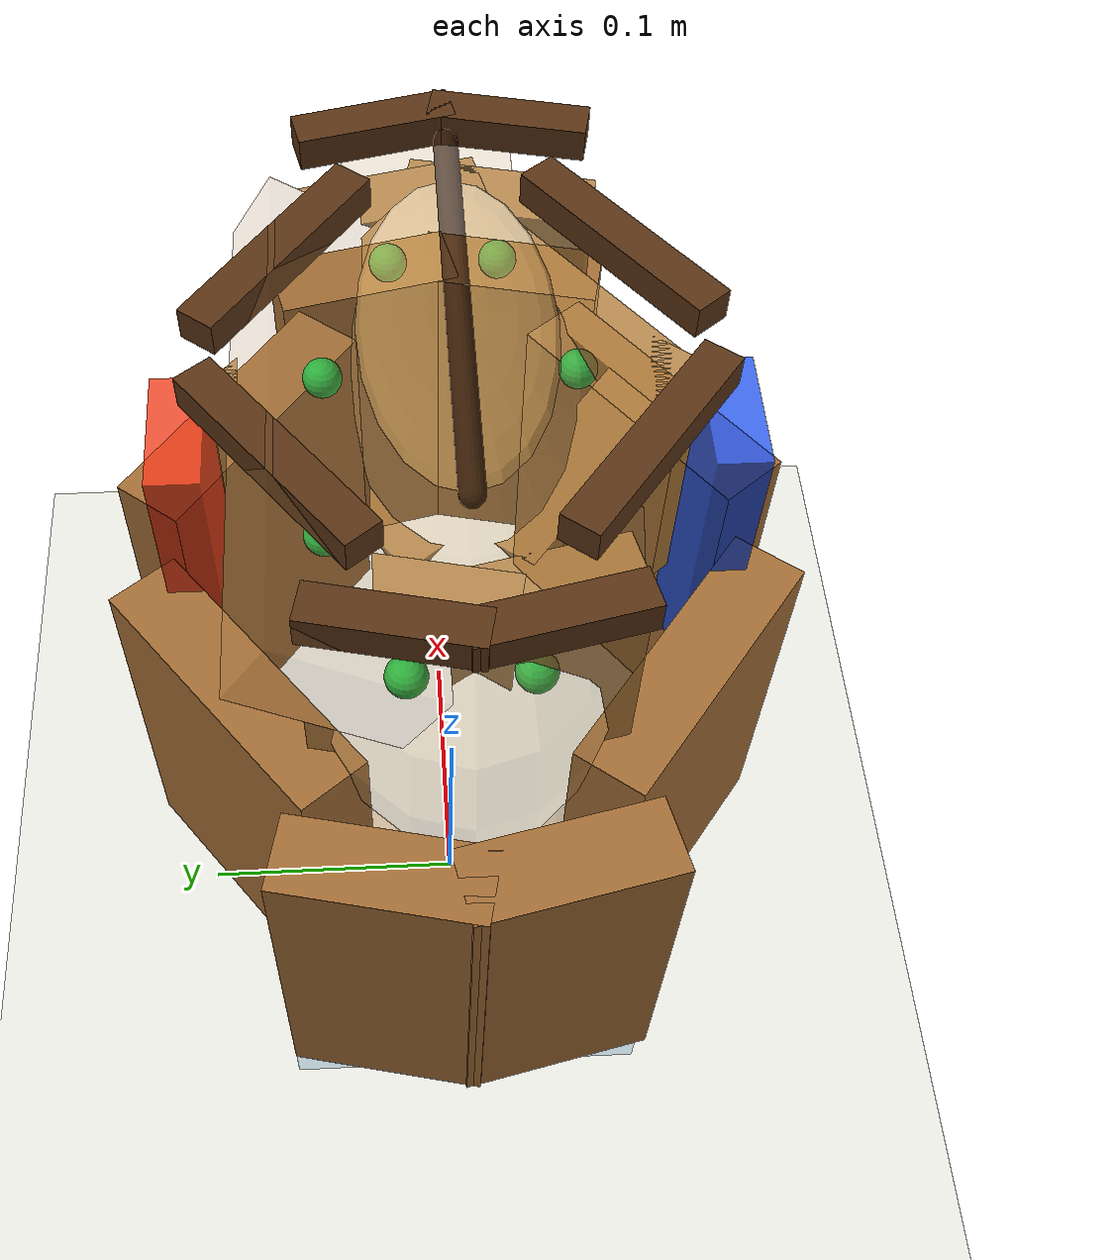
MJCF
<mujoco model="shape_coupled_sack_core_post_separation_sag">
  <compiler angle="degree" autolimits="true" />
  <option timestep="0.001000" gravity="0 0 -9.81" integrator="implicitfast" solver="Newton" iterations="100" ls_iterations="24" jacobian="sparse" cone="elliptic" impratio="4" />
  <size nconmax="900" njmax="1800" />
  <visual>
    <global offwidth="1280" offheight="820" />
  </visual>
  <worldbody>
    <geom friction="1.5 0.05 0.005" condim="4" solref="0.026 1" solimp="0.82 0.96 0.001" name="floor" type="plane" pos="0 0 0" size="2.0 2.0 0.05" rgba="0.91 0.91 0.89 1" />
    <light name="key_light" pos="0.4 -0.7 1.5" dir="-0.3 0.4 -1" />
    <camera name="front" pos="0.80 0 0.38" xyaxes="0 1 0 -0.24 0 0.97" />
    <camera name="side" pos="0 -0.78 0.38" xyaxes="1 0 0 0 0.24 0.97" />
    <camera name="overview" pos="0.85 -0.85 0.72" xyaxes="0.72 0.69 0 -0.34 0.35 0.87" />
    <body name="gripper_left_mocap" mocap="true" pos="0 -0.080000 0.230">
      <geom friction="2.3 0.12 0.010" condim="4" solref="0.030 1" solimp="0.78 0.94 0.001" name="gripper_left_mocap_pad" type="box" size="0.020 0.008 0.055" rgba="0.15 0.35 0.95 0.85" />
      <site name="gripper_left_mocap_site" pos="0 0 0" size="0.006" rgba="0.15 0.35 0.95 0.85" />
    </body>
    <body name="gripper_right_mocap" mocap="true" pos="0 0.080000 0.230">
      <geom friction="2.3 0.12 0.010" condim="4" solref="0.030 1" solimp="0.78 0.94 0.001" name="gripper_right_mocap_pad" type="box" size="0.020 0.008 0.055" rgba="0.95 0.25 0.12 0.85" />
      <site name="gripper_right_mocap_site" pos="0 0 0" size="0.006" rgba="0.95 0.25 0.12 0.85" />
    </body>
    <body name="gripper_center_mocap" mocap="true" pos="0 0 0.230">
      <site name="gripper_center_site" pos="0 0 0" size="0.006" rgba="1 1 0 0.8" />
    </body>
    <body name="hidden_support" pos="0 0 0.058">
      <geom friction="0.9 0.03 0.003" condim="4" solref="0.026 1" solimp="0.82 0.96 0.001" name="hidden_support_geom" type="box" size="0.104 0.062 0.012" rgba="0.10 0.65 0.95 0.24" />
    </body>
    <body name="bag_frame" pos="0 0 0.188">
      <freejoint name="bag_frame_freejoint" />
      <site name="bag_frame_origin" pos="0 0 0" size="0.006" rgba="1 0 0 0.7" />
      <body name="seam_band_00" pos="0.090340 0.020096 0.126000" euler="0 0 102.541136">
        <geom friction="1.35 0.08 0.006" condim="4" solref="0.026 1" solimp="0.82 0.96 0.001" name="seam_band_00_geom" type="box" size="0.023856 0.006000 0.005000" mass="0.016" rgba="0.35 0.20 0.08 0.90" />
        <site name="grasp_seam_00" pos="0 0 0" size="0.005" rgba="1 0.55 0.12 0.90" />
      </body>
      <body name="seam_band_01" pos="0.037420 0.048516 0.126000" euler="0 0 142.357206">
        <geom friction="1.35 0.08 0.006" condim="4" solref="0.026 1" solimp="0.82 0.96 0.001" name="seam_band_01_geom" type="box" size="0.036035 0.006000 0.005000" mass="0.016" rgba="0.35 0.20 0.08 0.90" />
        <site name="grasp_seam_01" pos="0 0 0" size="0.005" rgba="1 0.55 0.12 0.90" />
      </body>
      <body name="seam_band_02" pos="-0.037420 0.048516 0.126000" euler="0 0 217.642794">
        <geom friction="1.35 0.08 0.006" condim="4" solref="0.026 1" solimp="0.82 0.96 0.001" name="seam_band_02_geom" type="box" size="0.036035 0.006000 0.005000" mass="0.016" rgba="0.35 0.20 0.08 0.90" />
        <site name="grasp_seam_02" pos="0 0 0" size="0.005" rgba="1 0.55 0.12 0.90" />
      </body>
      <body name="seam_band_03" pos="-0.090340 0.020096 0.126000" euler="0 0 257.458864">
        <geom friction="1.35 0.08 0.006" condim="4" solref="0.026 1" solimp="0.82 0.96 0.001" name="seam_band_03_geom" type="box" size="0.023856 0.006000 0.005000" mass="0.016" rgba="0.35 0.20 0.08 0.90" />
        <site name="grasp_seam_03" pos="0 0 0" size="0.005" rgba="1 0.55 0.12 0.90" />
      </body>
      <body name="seam_band_04" pos="-0.090340 -0.020096 0.126000" euler="0 0 -77.458864">
        <geom friction="1.35 0.08 0.006" condim="4" solref="0.026 1" solimp="0.82 0.96 0.001" name="seam_band_04_geom" type="box" size="0.023856 0.006000 0.005000" mass="0.016" rgba="0.35 0.20 0.08 0.90" />
        <site name="grasp_seam_04" pos="0 0 0" size="0.005" rgba="1 0.55 0.12 0.90" />
      </body>
      <body name="seam_band_05" pos="-0.037420 -0.048516 0.126000" euler="0 0 -37.642794">
        <geom friction="1.35 0.08 0.006" condim="4" solref="0.026 1" solimp="0.82 0.96 0.001" name="seam_band_05_geom" type="box" size="0.036035 0.006000 0.005000" mass="0.016" rgba="0.35 0.20 0.08 0.90" />
        <site name="grasp_seam_05" pos="0 0 0" size="0.005" rgba="1 0.55 0.12 0.90" />
      </body>
      <body name="seam_band_06" pos="0.037420 -0.048516 0.126000" euler="0 0 37.642794">
        <geom friction="1.35 0.08 0.006" condim="4" solref="0.026 1" solimp="0.82 0.96 0.001" name="seam_band_06_geom" type="box" size="0.036035 0.006000 0.005000" mass="0.016" rgba="0.35 0.20 0.08 0.90" />
        <site name="grasp_seam_06" pos="0 0 0" size="0.005" rgba="1 0.55 0.12 0.90" />
      </body>
      <body name="seam_band_07" pos="0.090340 -0.020096 0.126000" euler="0 0 77.458864">
        <geom friction="1.35 0.08 0.006" condim="4" solref="0.026 1" solimp="0.82 0.96 0.001" name="seam_band_07_geom" type="box" size="0.023856 0.006000 0.005000" mass="0.016" rgba="0.35 0.20 0.08 0.90" />
        <site name="grasp_seam_07" pos="0 0 0" size="0.005" rgba="1 0.55 0.12 0.90" />
      </body>
      <body name="shoulder_panel_00" pos="0.090340 0.020096 0.116000" euler="0 0 102.541136">
        <joint name="shoulder_panel_00_hinge" type="hinge" axis="1 0 0" limited="true" range="-44 52" damping="9.000" stiffness="2.800" />
        <geom friction="1.35 0.08 0.006" condim="4" solref="0.026 1" solimp="0.82 0.96 0.001" name="shoulder_panel_00_geom" type="box" pos="0 0.018000 -0.045000" size="0.028425 0.010000 0.045000" mass="0.030" rgba="0.72 0.52 0.27 0.88" />
        <site name="grasp_shoulder_00" pos="0 0.012600 -0.031500" size="0.006" rgba="0.10 0.75 0.25 0.90" />
      </body>
      <body name="shoulder_panel_01" pos="0.037420 0.048516 0.116000" euler="0 0 142.357206">
        <joint name="shoulder_panel_01_hinge" type="hinge" axis="1 0 0" limited="true" range="-44 52" damping="9.000" stiffness="2.800" />
        <geom friction="1.35 0.08 0.006" condim="4" solref="0.026 1" solimp="0.82 0.96 0.001" name="shoulder_panel_01_geom" type="box" pos="0 0.018000 -0.045000" size="0.042935 0.010000 0.045000" mass="0.030" rgba="0.72 0.52 0.27 0.88" />
        <site name="grasp_shoulder_01" pos="0 0.012600 -0.031500" size="0.006" rgba="0.10 0.75 0.25 0.90" />
      </body>
      <body name="shoulder_panel_02" pos="-0.037420 0.048516 0.116000" euler="0 0 217.642794">
        <joint name="shoulder_panel_02_hinge" type="hinge" axis="1 0 0" limited="true" range="-44 52" damping="9.000" stiffness="2.800" />
        <geom friction="1.35 0.08 0.006" condim="4" solref="0.026 1" solimp="0.82 0.96 0.001" name="shoulder_panel_02_geom" type="box" pos="0 0.018000 -0.045000" size="0.042935 0.010000 0.045000" mass="0.030" rgba="0.72 0.52 0.27 0.88" />
        <site name="grasp_shoulder_02" pos="0 0.012600 -0.031500" size="0.006" rgba="0.10 0.75 0.25 0.90" />
      </body>
      <body name="shoulder_panel_03" pos="-0.090340 0.020096 0.116000" euler="0 0 257.458864">
        <joint name="shoulder_panel_03_hinge" type="hinge" axis="1 0 0" limited="true" range="-44 52" damping="9.000" stiffness="2.800" />
        <geom friction="1.35 0.08 0.006" condim="4" solref="0.026 1" solimp="0.82 0.96 0.001" name="shoulder_panel_03_geom" type="box" pos="0 0.018000 -0.045000" size="0.028425 0.010000 0.045000" mass="0.030" rgba="0.72 0.52 0.27 0.88" />
        <site name="grasp_shoulder_03" pos="0 0.012600 -0.031500" size="0.006" rgba="0.10 0.75 0.25 0.90" />
      </body>
      <body name="shoulder_panel_04" pos="-0.090340 -0.020096 0.116000" euler="0 0 -77.458864">
        <joint name="shoulder_panel_04_hinge" type="hinge" axis="1 0 0" limited="true" range="-44 52" damping="9.000" stiffness="2.800" />
        <geom friction="1.35 0.08 0.006" condim="4" solref="0.026 1" solimp="0.82 0.96 0.001" name="shoulder_panel_04_geom" type="box" pos="0 0.018000 -0.045000" size="0.028425 0.010000 0.045000" mass="0.030" rgba="0.72 0.52 0.27 0.88" />
        <site name="grasp_shoulder_04" pos="0 0.012600 -0.031500" size="0.006" rgba="0.10 0.75 0.25 0.90" />
      </body>
      <body name="shoulder_panel_05" pos="-0.037420 -0.048516 0.116000" euler="0 0 -37.642794">
        <joint name="shoulder_panel_05_hinge" type="hinge" axis="1 0 0" limited="true" range="-44 52" damping="9.000" stiffness="2.800" />
        <geom friction="1.35 0.08 0.006" condim="4" solref="0.026 1" solimp="0.82 0.96 0.001" name="shoulder_panel_05_geom" type="box" pos="0 0.018000 -0.045000" size="0.042935 0.010000 0.045000" mass="0.030" rgba="0.72 0.52 0.27 0.88" />
        <site name="grasp_shoulder_05" pos="0 0.012600 -0.031500" size="0.006" rgba="0.10 0.75 0.25 0.90" />
      </body>
      <body name="shoulder_panel_06" pos="0.037420 -0.048516 0.116000" euler="0 0 37.642794">
        <joint name="shoulder_panel_06_hinge" type="hinge" axis="1 0 0" limited="true" range="-44 52" damping="9.000" stiffness="2.800" />
        <geom friction="1.35 0.08 0.006" condim="4" solref="0.026 1" solimp="0.82 0.96 0.001" name="shoulder_panel_06_geom" type="box" pos="0 0.018000 -0.045000" size="0.042935 0.010000 0.045000" mass="0.030" rgba="0.72 0.52 0.27 0.88" />
        <site name="grasp_shoulder_06" pos="0 0.012600 -0.031500" size="0.006" rgba="0.10 0.75 0.25 0.90" />
      </body>
      <body name="shoulder_panel_07" pos="0.090340 -0.020096 0.116000" euler="0 0 77.458864">
        <joint name="shoulder_panel_07_hinge" type="hinge" axis="1 0 0" limited="true" range="-44 52" damping="9.000" stiffness="2.800" />
        <geom friction="1.35 0.08 0.006" condim="4" solref="0.026 1" solimp="0.82 0.96 0.001" name="shoulder_panel_07_geom" type="box" pos="0 0.018000 -0.045000" size="0.028425 0.010000 0.045000" mass="0.030" rgba="0.72 0.52 0.27 0.88" />
        <site name="grasp_shoulder_07" pos="0 0.012600 -0.031500" size="0.006" rgba="0.10 0.75 0.25 0.90" />
      </body>
      <body name="belly_panel_00" pos="0.095871 0.021326 0.046800" euler="0 0 102.541136">
        <joint name="belly_panel_00_hinge" type="hinge" axis="1 0 0" limited="true" range="-54 64" damping="10.000" stiffness="2.000" />
        <geom friction="1.35 0.08 0.006" condim="4" solref="0.026 1" solimp="0.82 0.96 0.001" name="belly_panel_00_geom" type="box" pos="0 -0.020000 -0.064500" size="0.031242 0.012000 0.064500" mass="0.038" rgba="0.64 0.43 0.21 0.90" />
      </body>
      <body name="belly_panel_01" pos="0.039711 0.051486 0.046800" euler="0 0 142.357206">
        <joint name="belly_panel_01_hinge" type="hinge" axis="1 0 0" limited="true" range="-54 64" damping="10.000" stiffness="2.000" />
        <geom friction="1.35 0.08 0.006" condim="4" solref="0.026 1" solimp="0.82 0.96 0.001" name="belly_panel_01_geom" type="box" pos="0 -0.020000 -0.064500" size="0.047191 0.012000 0.064500" mass="0.038" rgba="0.64 0.43 0.21 0.90" />
      </body>
      <body name="belly_panel_02" pos="-0.039711 0.051486 0.046800" euler="0 0 217.642794">
        <joint name="belly_panel_02_hinge" type="hinge" axis="1 0 0" limited="true" range="-54 64" damping="10.000" stiffness="2.000" />
        <geom friction="1.35 0.08 0.006" condim="4" solref="0.026 1" solimp="0.82 0.96 0.001" name="belly_panel_02_geom" type="box" pos="0 -0.020000 -0.064500" size="0.047191 0.012000 0.064500" mass="0.038" rgba="0.64 0.43 0.21 0.90" />
      </body>
      <body name="belly_panel_03" pos="-0.095871 0.021326 0.046800" euler="0 0 257.458864">
        <joint name="belly_panel_03_hinge" type="hinge" axis="1 0 0" limited="true" range="-54 64" damping="10.000" stiffness="2.000" />
        <geom friction="1.35 0.08 0.006" condim="4" solref="0.026 1" solimp="0.82 0.96 0.001" name="belly_panel_03_geom" type="box" pos="0 -0.020000 -0.064500" size="0.031242 0.012000 0.064500" mass="0.038" rgba="0.64 0.43 0.21 0.90" />
      </body>
      <body name="belly_panel_04" pos="-0.095871 -0.021326 0.046800" euler="0 0 -77.458864">
        <joint name="belly_panel_04_hinge" type="hinge" axis="1 0 0" limited="true" range="-54 64" damping="10.000" stiffness="2.000" />
        <geom friction="1.35 0.08 0.006" condim="4" solref="0.026 1" solimp="0.82 0.96 0.001" name="belly_panel_04_geom" type="box" pos="0 -0.020000 -0.064500" size="0.031242 0.012000 0.064500" mass="0.038" rgba="0.64 0.43 0.21 0.90" />
      </body>
      <body name="belly_panel_05" pos="-0.039711 -0.051486 0.046800" euler="0 0 -37.642794">
        <joint name="belly_panel_05_hinge" type="hinge" axis="1 0 0" limited="true" range="-54 64" damping="10.000" stiffness="2.000" />
        <geom friction="1.35 0.08 0.006" condim="4" solref="0.026 1" solimp="0.82 0.96 0.001" name="belly_panel_05_geom" type="box" pos="0 -0.020000 -0.064500" size="0.047191 0.012000 0.064500" mass="0.038" rgba="0.64 0.43 0.21 0.90" />
      </body>
      <body name="belly_panel_06" pos="0.039711 -0.051486 0.046800" euler="0 0 37.642794">
        <joint name="belly_panel_06_hinge" type="hinge" axis="1 0 0" limited="true" range="-54 64" damping="10.000" stiffness="2.000" />
        <geom friction="1.35 0.08 0.006" condim="4" solref="0.026 1" solimp="0.82 0.96 0.001" name="belly_panel_06_geom" type="box" pos="0 -0.020000 -0.064500" size="0.047191 0.012000 0.064500" mass="0.038" rgba="0.64 0.43 0.21 0.90" />
      </body>
      <body name="belly_panel_07" pos="0.095871 -0.021326 0.046800" euler="0 0 77.458864">
        <joint name="belly_panel_07_hinge" type="hinge" axis="1 0 0" limited="true" range="-54 64" damping="10.000" stiffness="2.000" />
        <geom friction="1.35 0.08 0.006" condim="4" solref="0.026 1" solimp="0.82 0.96 0.001" name="belly_panel_07_geom" type="box" pos="0 -0.020000 -0.064500" size="0.031242 0.012000 0.064500" mass="0.038" rgba="0.64 0.43 0.21 0.90" />
      </body>
      <body name="bottom_sling" pos="0 0 -0.143250">
        <joint name="bottom_sling_sag" type="slide" axis="0 0 1" limited="true" range="-0.018000 0.010000" damping="16.000" stiffness="3.000" />
        <geom friction="1.35 0.08 0.006" condim="4" solref="0.026 1" solimp="0.82 0.96 0.001" name="bottom_sling_pad" type="box" size="0.086 0.050 0.008" mass="0.070" rgba="0.55 0.33 0.14 0.82" />
        <site name="bottom_sling_site" pos="0 0 0" size="0.005" rgba="0.8 0.35 0.08 0.8" />
      </body>
      <body name="fold_root_flap_1" pos="-0.018000 0.030000 0.138000" euler="-58.000000 0 0">
        <joint name="fold_root_flap_1_hinge" type="hinge" axis="1 0 0" limited="true" range="-125 22" damping="8.0" stiffness="2.8" />
        <geom friction="1.35 0.08 0.006" condim="4" solref="0.026 1" solimp="0.82 0.96 0.001" name="fold_root_flap_1_geom" type="box" pos="0 0.028 -0.012" size="0.081697 0.012000 0.026000" mass="0.001" rgba="0.70 0.50 0.27 0.04" contype="0" conaffinity="0" />
        <site name="grasp_fold_1" pos="0 0.028 -0.012" size="0.005" rgba="0.1 0.2 1 0.40" />
      </body>
      <body name="fold_root_flap_2" pos="0.034000 0.018000 0.128000" euler="-95.000000 0 0">
        <joint name="fold_root_flap_2_hinge" type="hinge" axis="1 0 0" limited="true" range="-125 22" damping="8.0" stiffness="2.8" />
        <geom friction="1.35 0.08 0.006" condim="4" solref="0.026 1" solimp="0.82 0.96 0.001" name="fold_root_flap_2_geom" type="box" pos="0 0.028 -0.012" size="0.081697 0.012000 0.026000" mass="0.001" rgba="0.70 0.50 0.27 0.04" contype="0" conaffinity="0" />
        <site name="grasp_fold_2" pos="0 0.028 -0.012" size="0.005" rgba="0.1 0.2 1 0.40" />
      </body>
      <body name="payload_main" pos="0.000000 0.000000 -0.118000">
        <joint name="payload_main_x" type="slide" axis="1 0 0" limited="true" range="-0.028 0.028" damping="20" stiffness="3.0" />
        <joint name="payload_main_y" type="slide" axis="0 1 0" limited="true" range="-0.024 0.024" damping="20" stiffness="3.0" />
        <joint name="payload_main_z" type="slide" axis="0 0 1" limited="true" range="-0.020 0.020" damping="20" stiffness="3.0" />
        <geom friction="1.35 0.08 0.006" condim="4" solref="0.026 1" solimp="0.82 0.96 0.001" name="payload_main_geom" type="ellipsoid" size="0.066000 0.042000 0.040000" mass="0.4200" rgba="0.42 0.22 0.10 0.72" />
      </body>
      <body name="visual_upper_hull" pos="0 0 0.052">
        <geom friction="1.35 0.08 0.006" condim="4" solref="0.026 1" solimp="0.82 0.96 0.001" name="visual_upper_hull_geom" type="ellipsoid" size="0.108000 0.058000 0.078000" rgba="0.78 0.62 0.38 0.28" contype="0" conaffinity="0" mass="0.001" />
      </body>
      <body name="visual_lower_hull" pos="0 0 -0.078750">
        <geom friction="1.35 0.08 0.006" condim="4" solref="0.026 1" solimp="0.82 0.96 0.001" name="visual_lower_hull_geom" type="ellipsoid" size="0.112320 0.060320 0.116850" rgba="0.72 0.50 0.25 0.42" contype="0" conaffinity="0" mass="0.001" />
      </body>
      <body name="sealed_top_cap_visual" pos="0 0 0.134000">
        <geom friction="1.35 0.08 0.006" condim="4" solref="0.026 1" solimp="0.82 0.96 0.001" name="sealed_top_cap_visual_geom" type="ellipsoid" size="0.057154 0.027283 0.006000" rgba="0.82 0.64 0.36 0.60" contype="0" conaffinity="0" mass="0.001" />
      </body>
      <body name="sealed_top_stitch_visual" pos="0 0 0.142000">
        <geom friction="1.35 0.08 0.006" condim="4" solref="0.026 1" solimp="0.82 0.96 0.001" name="sealed_top_stitch_visual_geom" type="capsule" fromto="-0.064 0 0 0.064 0 0" size="0.0035" rgba="0.22 0.12 0.05 0.75" contype="0" conaffinity="0" mass="0.001" />
      </body>
    </body>
  </worldbody>
</mujoco>
